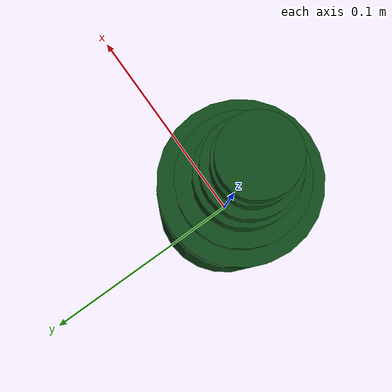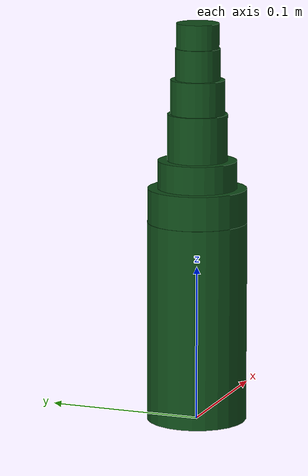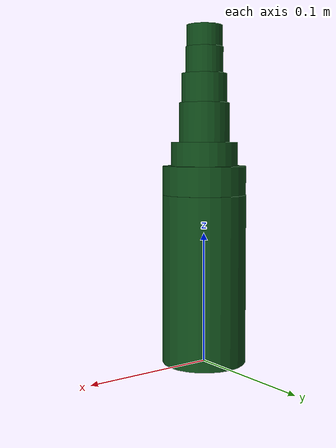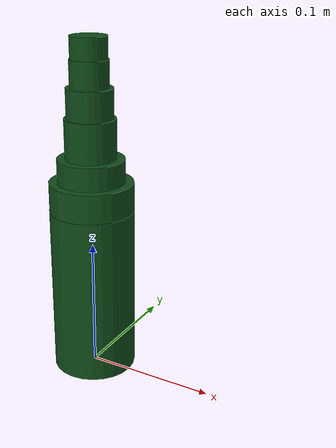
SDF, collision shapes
<?xml version="1.0" ?>
<!-- GENERATED by ros2_ws/src/bartender_gazebo/scripts/make_beer_and_opener.py.
     Edit that script and re-run it; edits here are overwritten. -->
<sdf version="1.9">
  <model name="beer_bottle">
    <link name="beer_link">
      <inertial>
        <pose>0 0 0.1050 0 0 0</pose>
        <mass>0.7</mass>
        <inertia>
          <ixx>0.004067</ixx>
          <iyy>0.004067</iyy>
          <izz>0.000363</izz>
          <ixy>0</ixy><ixz>0</ixz><iyz>0</iyz>
        </inertia>
      </inertial>

      <!-- Same damping the cola needed: a cylinder standing on a flat counter
           gets a narrow contact manifold and will spin on it indefinitely. -->
      <velocity_decay>
        <linear>0.05</linear>
        <angular>0.30</angular>
      </velocity_decay>

      <visual name="beer_visual">
        <geometry>
          <mesh>
            <uri>meshes/beer_bottle.obj</uri>
            <scale>0.01 0.01 0.01</scale>
          </mesh>
        </geometry>
        <!-- Heineken green: the real bar's beer. -->
        <material>
          <ambient>0.01 0.05 0.02 1</ambient>
          <diffuse>0.06 0.30 0.10 1</diffuse>
          <specular>0.6 0.6 0.6 1</specular>
        </material>
      </visual>

      <collision name="beer_band_0_collision">
        <pose>0 0 0.065000 0 0 0</pose>
        <geometry><cylinder><radius>0.032194</radius>
          <length>0.130000</length></cylinder></geometry>
        <surface><friction><ode><mu>0.9</mu><mu2>0.9</mu2></ode></friction></surface>
      </collision>
      <collision name="beer_band_1_collision">
        <pose>0 0 0.141000 0 0 0</pose>
        <geometry><cylinder><radius>0.031985</radius>
          <length>0.022000</length></cylinder></geometry>
        <surface><friction><ode><mu>0.9</mu><mu2>0.9</mu2></ode></friction></surface>
      </collision>
      <collision name="beer_band_2_collision">
        <pose>0 0 0.161000 0 0 0</pose>
        <geometry><cylinder><radius>0.025513</radius>
          <length>0.018000</length></cylinder></geometry>
        <surface><friction><ode><mu>0.9</mu><mu2>0.9</mu2></ode></friction></surface>
      </collision>
      <collision name="beer_band_3_collision">
        <pose>0 0 0.185000 0 0 0</pose>
        <geometry><cylinder><radius>0.019332</radius>
          <length>0.030000</length></cylinder></geometry>
        <surface><friction><ode><mu>0.9</mu><mu2>0.9</mu2></ode></friction></surface>
      </collision>
      <collision name="beer_band_4_collision">
        <pose>0 0 0.211000 0 0 0</pose>
        <geometry><cylinder><radius>0.017463</radius>
          <length>0.022000</length></cylinder></geometry>
        <surface><friction><ode><mu>0.9</mu><mu2>0.9</mu2></ode></friction></surface>
      </collision>
      <collision name="beer_band_5_collision">
        <pose>0 0 0.232000 0 0 0</pose>
        <geometry><cylinder><radius>0.014425</radius>
          <length>0.020000</length></cylinder></geometry>
        <surface><friction><ode><mu>0.9</mu><mu2>0.9</mu2></ode></friction></surface>
      </collision>
      <collision name="beer_band_6_collision">
        <pose>0 0 0.250050 0 0 0</pose>
        <geometry><cylinder><radius>0.013673</radius>
          <length>0.016100</length></cylinder></geometry>
        <surface><friction><ode><mu>0.9</mu><mu2>0.9</mu2></ode></friction></surface>
      </collision>
    </link>

    <plugin filename="ignition-gazebo-detachable-joint-system"
            name="ignition::gazebo::systems::DetachableJoint">
      <parent_link>beer_link</parent_link>
      <child_model>beer_cap</child_model>
      <child_link>cap_link</child_link>
      <detach_topic>/beer/cap/detach</detach_topic>
    </plugin>
  </model>
</sdf>
